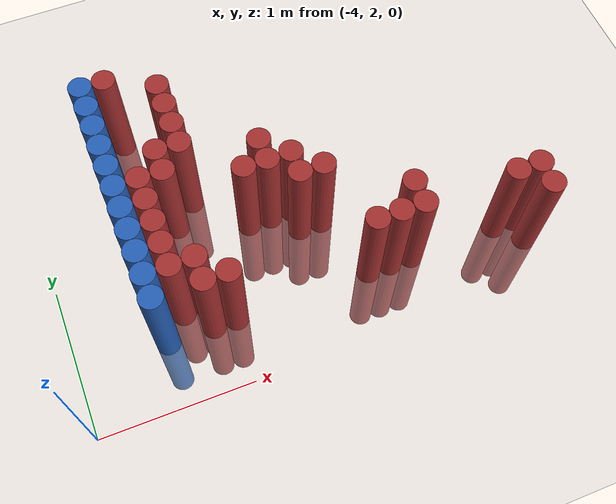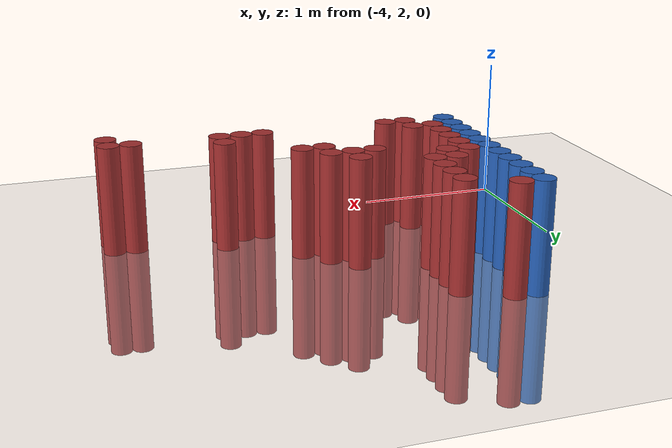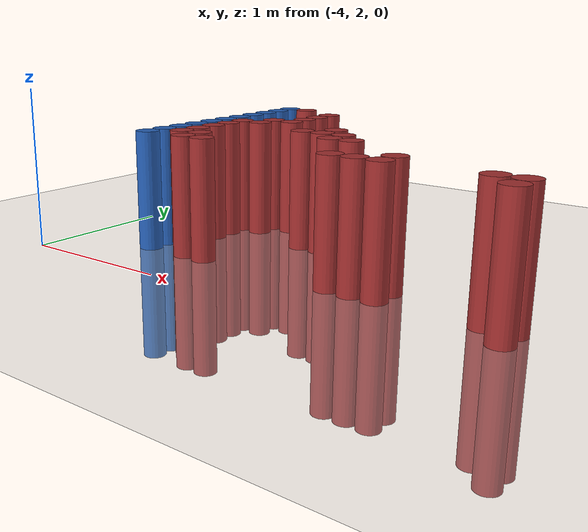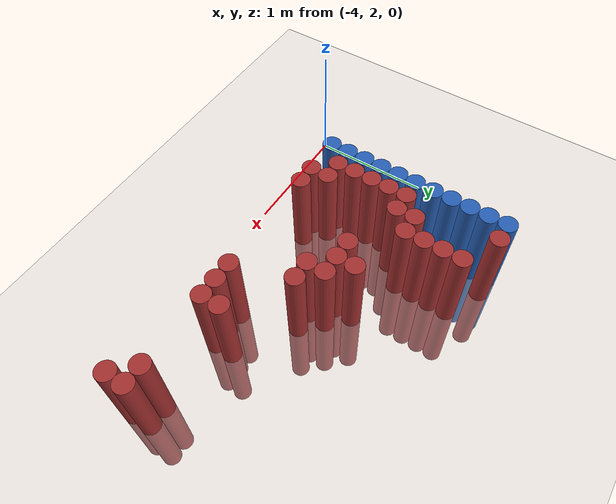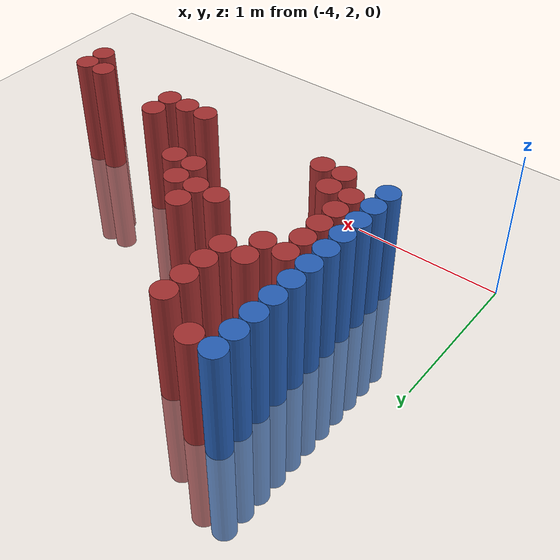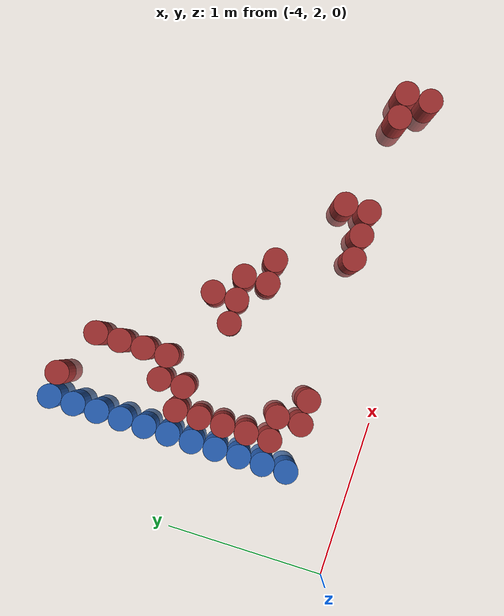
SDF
<sdf version="1.6">
 <world name="default">
  <model name="ground_plane">
   <static>1</static>
   <link name="link">
    <collision name="collision">
     <geometry><plane><normal>0 0 1</normal><size>100 100</size></plane></geometry>
     <surface><friction><ode><mu>100</mu><mu2>50</mu2></ode></friction></surface>
    </collision>
    <visual name="visual">
     <cast_shadows>0</cast_shadows>
     <geometry><plane><normal>0 0 1</normal><size>100 100</size></plane></geometry>
     <material>
      <script><uri>file://media/materials/scripts/gazebo.material</uri><name>Gazebo/Grey</name></script>
     </material>
    </visual>
   </link>
  </model>
  <model name="unit_cylinder_147">
   <static>1</static>
   <pose>-3.425000 2.425000 0.000000 0.000000 0.000000 0.000000</pose>
   <link name="link">
    <inertial>
     <mass>1</mass>
     <inertia><ixx>0.145833</ixx><ixy>0</ixy><ixz>0</ixz><iyy>0.145833</iyy><iyz>0</iyz><izz>0.125</izz></inertia>
    </inertial>
    <collision name="collision">
     <geometry><cylinder><radius>0.075000</radius><length>1.5</length></cylinder></geometry>
    </collision>
    <visual name="visual">
     <geometry><cylinder><radius>0.075000</radius><length>1.5</length></cylinder></geometry>
     <material>
      <ambient>0.152000 0.379000 0.720000 1</ambient>
      <diffuse>0.152000 0.379000 0.720000 1</diffuse>
     </material>
     <material>
      <script><name>Gazebo/Grey</name><uri>file://media/materials/scripts/gazebo.material</uri></script>
     </material>
    </visual>
   </link>
  </model>
  <model name="unit_cylinder_149">
   <static>1</static>
   <pose>-3.425000 2.575000 0.000000 0.000000 0.000000 0.000000</pose>
   <link name="link">
    <inertial>
     <mass>1</mass>
     <inertia><ixx>0.145833</ixx><ixy>0</ixy><ixz>0</ixz><iyy>0.145833</iyy><iyz>0</iyz><izz>0.125</izz></inertia>
    </inertial>
    <collision name="collision">
     <geometry><cylinder><radius>0.075000</radius><length>1.5</length></cylinder></geometry>
    </collision>
    <visual name="visual">
     <geometry><cylinder><radius>0.075000</radius><length>1.5</length></cylinder></geometry>
     <material>
      <ambient>0.152000 0.379000 0.720000 1</ambient>
      <diffuse>0.152000 0.379000 0.720000 1</diffuse>
     </material>
     <material>
      <script><name>Gazebo/Grey</name><uri>file://media/materials/scripts/gazebo.material</uri></script>
     </material>
    </visual>
   </link>
  </model>
  <model name="unit_cylinder_151">
   <static>1</static>
   <pose>-3.425000 2.725000 0.000000 0.000000 0.000000 0.000000</pose>
   <link name="link">
    <inertial>
     <mass>1</mass>
     <inertia><ixx>0.145833</ixx><ixy>0</ixy><ixz>0</ixz><iyy>0.145833</iyy><iyz>0</iyz><izz>0.125</izz></inertia>
    </inertial>
    <collision name="collision">
     <geometry><cylinder><radius>0.075000</radius><length>1.5</length></cylinder></geometry>
    </collision>
    <visual name="visual">
     <geometry><cylinder><radius>0.075000</radius><length>1.5</length></cylinder></geometry>
     <material>
      <ambient>0.152000 0.379000 0.720000 1</ambient>
      <diffuse>0.152000 0.379000 0.720000 1</diffuse>
     </material>
     <material>
      <script><name>Gazebo/Grey</name><uri>file://media/materials/scripts/gazebo.material</uri></script>
     </material>
    </visual>
   </link>
  </model>
  <model name="unit_cylinder_153">
   <static>1</static>
   <pose>-3.425000 2.875000 0.000000 0.000000 0.000000 0.000000</pose>
   <link name="link">
    <inertial>
     <mass>1</mass>
     <inertia><ixx>0.145833</ixx><ixy>0</ixy><ixz>0</ixz><iyy>0.145833</iyy><iyz>0</iyz><izz>0.125</izz></inertia>
    </inertial>
    <collision name="collision">
     <geometry><cylinder><radius>0.075000</radius><length>1.5</length></cylinder></geometry>
    </collision>
    <visual name="visual">
     <geometry><cylinder><radius>0.075000</radius><length>1.5</length></cylinder></geometry>
     <material>
      <ambient>0.152000 0.379000 0.720000 1</ambient>
      <diffuse>0.152000 0.379000 0.720000 1</diffuse>
     </material>
     <material>
      <script><name>Gazebo/Grey</name><uri>file://media/materials/scripts/gazebo.material</uri></script>
     </material>
    </visual>
   </link>
  </model>
  <model name="unit_cylinder_155">
   <static>1</static>
   <pose>-3.425000 3.025000 0.000000 0.000000 0.000000 0.000000</pose>
   <link name="link">
    <inertial>
     <mass>1</mass>
     <inertia><ixx>0.145833</ixx><ixy>0</ixy><ixz>0</ixz><iyy>0.145833</iyy><iyz>0</iyz><izz>0.125</izz></inertia>
    </inertial>
    <collision name="collision">
     <geometry><cylinder><radius>0.075000</radius><length>1.5</length></cylinder></geometry>
    </collision>
    <visual name="visual">
     <geometry><cylinder><radius>0.075000</radius><length>1.5</length></cylinder></geometry>
     <material>
      <ambient>0.152000 0.379000 0.720000 1</ambient>
      <diffuse>0.152000 0.379000 0.720000 1</diffuse>
     </material>
     <material>
      <script><name>Gazebo/Grey</name><uri>file://media/materials/scripts/gazebo.material</uri></script>
     </material>
    </visual>
   </link>
  </model>
  <model name="unit_cylinder_157">
   <static>1</static>
   <pose>-3.425000 3.175000 0.000000 0.000000 0.000000 0.000000</pose>
   <link name="link">
    <inertial>
     <mass>1</mass>
     <inertia><ixx>0.145833</ixx><ixy>0</ixy><ixz>0</ixz><iyy>0.145833</iyy><iyz>0</iyz><izz>0.125</izz></inertia>
    </inertial>
    <collision name="collision">
     <geometry><cylinder><radius>0.075000</radius><length>1.5</length></cylinder></geometry>
    </collision>
    <visual name="visual">
     <geometry><cylinder><radius>0.075000</radius><length>1.5</length></cylinder></geometry>
     <material>
      <ambient>0.152000 0.379000 0.720000 1</ambient>
      <diffuse>0.152000 0.379000 0.720000 1</diffuse>
     </material>
     <material>
      <script><name>Gazebo/Grey</name><uri>file://media/materials/scripts/gazebo.material</uri></script>
     </material>
    </visual>
   </link>
  </model>
  <model name="unit_cylinder_159">
   <static>1</static>
   <pose>-3.425000 3.325000 0.000000 0.000000 0.000000 0.000000</pose>
   <link name="link">
    <inertial>
     <mass>1</mass>
     <inertia><ixx>0.145833</ixx><ixy>0</ixy><ixz>0</ixz><iyy>0.145833</iyy><iyz>0</iyz><izz>0.125</izz></inertia>
    </inertial>
    <collision name="collision">
     <geometry><cylinder><radius>0.075000</radius><length>1.5</length></cylinder></geometry>
    </collision>
    <visual name="visual">
     <geometry><cylinder><radius>0.075000</radius><length>1.5</length></cylinder></geometry>
     <material>
      <ambient>0.152000 0.379000 0.720000 1</ambient>
      <diffuse>0.152000 0.379000 0.720000 1</diffuse>
     </material>
     <material>
      <script><name>Gazebo/Grey</name><uri>file://media/materials/scripts/gazebo.material</uri></script>
     </material>
    </visual>
   </link>
  </model>
  <model name="unit_cylinder_161">
   <static>1</static>
   <pose>-3.425000 3.475000 0.000000 0.000000 0.000000 0.000000</pose>
   <link name="link">
    <inertial>
     <mass>1</mass>
     <inertia><ixx>0.145833</ixx><ixy>0</ixy><ixz>0</ixz><iyy>0.145833</iyy><iyz>0</iyz><izz>0.125</izz></inertia>
    </inertial>
    <collision name="collision">
     <geometry><cylinder><radius>0.075000</radius><length>1.5</length></cylinder></geometry>
    </collision>
    <visual name="visual">
     <geometry><cylinder><radius>0.075000</radius><length>1.5</length></cylinder></geometry>
     <material>
      <ambient>0.152000 0.379000 0.720000 1</ambient>
      <diffuse>0.152000 0.379000 0.720000 1</diffuse>
     </material>
     <material>
      <script><name>Gazebo/Grey</name><uri>file://media/materials/scripts/gazebo.material</uri></script>
     </material>
    </visual>
   </link>
  </model>
  <model name="unit_cylinder_163">
   <static>1</static>
   <pose>-3.425000 3.625000 0.000000 0.000000 0.000000 0.000000</pose>
   <link name="link">
    <inertial>
     <mass>1</mass>
     <inertia><ixx>0.145833</ixx><ixy>0</ixy><ixz>0</ixz><iyy>0.145833</iyy><iyz>0</iyz><izz>0.125</izz></inertia>
    </inertial>
    <collision name="collision">
     <geometry><cylinder><radius>0.075000</radius><length>1.5</length></cylinder></geometry>
    </collision>
    <visual name="visual">
     <geometry><cylinder><radius>0.075000</radius><length>1.5</length></cylinder></geometry>
     <material>
      <ambient>0.152000 0.379000 0.720000 1</ambient>
      <diffuse>0.152000 0.379000 0.720000 1</diffuse>
     </material>
     <material>
      <script><name>Gazebo/Grey</name><uri>file://media/materials/scripts/gazebo.material</uri></script>
     </material>
    </visual>
   </link>
  </model>
  <model name="unit_cylinder_165">
   <static>1</static>
   <pose>-3.425000 3.775000 0.000000 0.000000 0.000000 0.000000</pose>
   <link name="link">
    <inertial>
     <mass>1</mass>
     <inertia><ixx>0.145833</ixx><ixy>0</ixy><ixz>0</ixz><iyy>0.145833</iyy><iyz>0</iyz><izz>0.125</izz></inertia>
    </inertial>
    <collision name="collision">
     <geometry><cylinder><radius>0.075000</radius><length>1.5</length></cylinder></geometry>
    </collision>
    <visual name="visual">
     <geometry><cylinder><radius>0.075000</radius><length>1.5</length></cylinder></geometry>
     <material>
      <ambient>0.152000 0.379000 0.720000 1</ambient>
      <diffuse>0.152000 0.379000 0.720000 1</diffuse>
     </material>
     <material>
      <script><name>Gazebo/Grey</name><uri>file://media/materials/scripts/gazebo.material</uri></script>
     </material>
    </visual>
   </link>
  </model>
  <model name="unit_cylinder_167">
   <static>1</static>
   <pose>-3.425000 3.925000 0.000000 0.000000 0.000000 0.000000</pose>
   <link name="link">
    <inertial>
     <mass>1</mass>
     <inertia><ixx>0.145833</ixx><ixy>0</ixy><ixz>0</ixz><iyy>0.145833</iyy><iyz>0</iyz><izz>0.125</izz></inertia>
    </inertial>
    <collision name="collision">
     <geometry><cylinder><radius>0.075000</radius><length>1.5</length></cylinder></geometry>
    </collision>
    <visual name="visual">
     <geometry><cylinder><radius>0.075000</radius><length>1.5</length></cylinder></geometry>
     <material>
      <ambient>0.152000 0.379000 0.720000 1</ambient>
      <diffuse>0.152000 0.379000 0.720000 1</diffuse>
     </material>
     <material>
      <script><name>Gazebo/Grey</name><uri>file://media/materials/scripts/gazebo.material</uri></script>
     </material>
    </visual>
   </link>
  </model>
  <model name="unit_cylinder_237">
   <static>1</static>
   <pose>-3.425000 2.425000 0.000000 0.000000 0.000000 0.000000</pose>
   <link name="link">
    <inertial>
     <mass>1</mass>
     <inertia><ixx>0.145833</ixx><ixy>0</ixy><ixz>0</ixz><iyy>0.145833</iyy><iyz>0</iyz><izz>0.125</izz></inertia>
    </inertial>
    <collision name="collision">
     <geometry><cylinder><radius>0.075000</radius><length>1.5</length></cylinder></geometry>
    </collision>
    <visual name="visual">
     <geometry><cylinder><radius>0.075000</radius><length>1.5</length></cylinder></geometry>
     <material>
      <ambient>0.152000 0.379000 0.720000 1</ambient>
      <diffuse>0.152000 0.379000 0.720000 1</diffuse>
     </material>
     <material>
      <script><name>Gazebo/Grey</name><uri>file://media/materials/scripts/gazebo.material</uri></script>
     </material>
    </visual>
   </link>
  </model>
  <model name="unit_cylinder_238">
   <static>1</static>
   <pose>-3.425000 2.575000 0.000000 0.000000 0.000000 0.000000</pose>
   <link name="link">
    <inertial>
     <mass>1</mass>
     <inertia><ixx>0.145833</ixx><ixy>0</ixy><ixz>0</ixz><iyy>0.145833</iyy><iyz>0</iyz><izz>0.125</izz></inertia>
    </inertial>
    <collision name="collision">
     <geometry><cylinder><radius>0.075000</radius><length>1.5</length></cylinder></geometry>
    </collision>
    <visual name="visual">
     <geometry><cylinder><radius>0.075000</radius><length>1.5</length></cylinder></geometry>
     <material>
      <ambient>0.152000 0.379000 0.720000 1</ambient>
      <diffuse>0.152000 0.379000 0.720000 1</diffuse>
     </material>
     <material>
      <script><name>Gazebo/Grey</name><uri>file://media/materials/scripts/gazebo.material</uri></script>
     </material>
    </visual>
   </link>
  </model>
  <model name="unit_cylinder_239">
   <static>1</static>
   <pose>-3.425000 2.725000 0.000000 0.000000 0.000000 0.000000</pose>
   <link name="link">
    <inertial>
     <mass>1</mass>
     <inertia><ixx>0.145833</ixx><ixy>0</ixy><ixz>0</ixz><iyy>0.145833</iyy><iyz>0</iyz><izz>0.125</izz></inertia>
    </inertial>
    <collision name="collision">
     <geometry><cylinder><radius>0.075000</radius><length>1.5</length></cylinder></geometry>
    </collision>
    <visual name="visual">
     <geometry><cylinder><radius>0.075000</radius><length>1.5</length></cylinder></geometry>
     <material>
      <ambient>0.152000 0.379000 0.720000 1</ambient>
      <diffuse>0.152000 0.379000 0.720000 1</diffuse>
     </material>
     <material>
      <script><name>Gazebo/Grey</name><uri>file://media/materials/scripts/gazebo.material</uri></script>
     </material>
    </visual>
   </link>
  </model>
  <model name="unit_cylinder_240">
   <static>1</static>
   <pose>-3.425000 2.875000 0.000000 0.000000 0.000000 0.000000</pose>
   <link name="link">
    <inertial>
     <mass>1</mass>
     <inertia><ixx>0.145833</ixx><ixy>0</ixy><ixz>0</ixz><iyy>0.145833</iyy><iyz>0</iyz><izz>0.125</izz></inertia>
    </inertial>
    <collision name="collision">
     <geometry><cylinder><radius>0.075000</radius><length>1.5</length></cylinder></geometry>
    </collision>
    <visual name="visual">
     <geometry><cylinder><radius>0.075000</radius><length>1.5</length></cylinder></geometry>
     <material>
      <ambient>0.152000 0.379000 0.720000 1</ambient>
      <diffuse>0.152000 0.379000 0.720000 1</diffuse>
     </material>
     <material>
      <script><name>Gazebo/Grey</name><uri>file://media/materials/scripts/gazebo.material</uri></script>
     </material>
    </visual>
   </link>
  </model>
  <model name="unit_cylinder_241">
   <static>1</static>
   <pose>-3.425000 3.025000 0.000000 0.000000 0.000000 0.000000</pose>
   <link name="link">
    <inertial>
     <mass>1</mass>
     <inertia><ixx>0.145833</ixx><ixy>0</ixy><ixz>0</ixz><iyy>0.145833</iyy><iyz>0</iyz><izz>0.125</izz></inertia>
    </inertial>
    <collision name="collision">
     <geometry><cylinder><radius>0.075000</radius><length>1.5</length></cylinder></geometry>
    </collision>
    <visual name="visual">
     <geometry><cylinder><radius>0.075000</radius><length>1.5</length></cylinder></geometry>
     <material>
      <ambient>0.152000 0.379000 0.720000 1</ambient>
      <diffuse>0.152000 0.379000 0.720000 1</diffuse>
     </material>
     <material>
      <script><name>Gazebo/Grey</name><uri>file://media/materials/scripts/gazebo.material</uri></script>
     </material>
    </visual>
   </link>
  </model>
  <model name="unit_cylinder_242">
   <static>1</static>
   <pose>-3.425000 3.175000 0.000000 0.000000 0.000000 0.000000</pose>
   <link name="link">
    <inertial>
     <mass>1</mass>
     <inertia><ixx>0.145833</ixx><ixy>0</ixy><ixz>0</ixz><iyy>0.145833</iyy><iyz>0</iyz><izz>0.125</izz></inertia>
    </inertial>
    <collision name="collision">
     <geometry><cylinder><radius>0.075000</radius><length>1.5</length></cylinder></geometry>
    </collision>
    <visual name="visual">
     <geometry><cylinder><radius>0.075000</radius><length>1.5</length></cylinder></geometry>
     <material>
      <ambient>0.152000 0.379000 0.720000 1</ambient>
      <diffuse>0.152000 0.379000 0.720000 1</diffuse>
     </material>
     <material>
      <script><name>Gazebo/Grey</name><uri>file://media/materials/scripts/gazebo.material</uri></script>
     </material>
    </visual>
   </link>
  </model>
  <model name="unit_cylinder_243">
   <static>1</static>
   <pose>-3.425000 3.325000 0.000000 0.000000 0.000000 0.000000</pose>
   <link name="link">
    <inertial>
     <mass>1</mass>
     <inertia><ixx>0.145833</ixx><ixy>0</ixy><ixz>0</ixz><iyy>0.145833</iyy><iyz>0</iyz><izz>0.125</izz></inertia>
    </inertial>
    <collision name="collision">
     <geometry><cylinder><radius>0.075000</radius><length>1.5</length></cylinder></geometry>
    </collision>
    <visual name="visual">
     <geometry><cylinder><radius>0.075000</radius><length>1.5</length></cylinder></geometry>
     <material>
      <ambient>0.152000 0.379000 0.720000 1</ambient>
      <diffuse>0.152000 0.379000 0.720000 1</diffuse>
     </material>
     <material>
      <script><name>Gazebo/Grey</name><uri>file://media/materials/scripts/gazebo.material</uri></script>
     </material>
    </visual>
   </link>
  </model>
  <model name="unit_cylinder_244">
   <static>1</static>
   <pose>-3.425000 3.475000 0.000000 0.000000 0.000000 0.000000</pose>
   <link name="link">
    <inertial>
     <mass>1</mass>
     <inertia><ixx>0.145833</ixx><ixy>0</ixy><ixz>0</ixz><iyy>0.145833</iyy><iyz>0</iyz><izz>0.125</izz></inertia>
    </inertial>
    <collision name="collision">
     <geometry><cylinder><radius>0.075000</radius><length>1.5</length></cylinder></geometry>
    </collision>
    <visual name="visual">
     <geometry><cylinder><radius>0.075000</radius><length>1.5</length></cylinder></geometry>
     <material>
      <ambient>0.152000 0.379000 0.720000 1</ambient>
      <diffuse>0.152000 0.379000 0.720000 1</diffuse>
     </material>
     <material>
      <script><name>Gazebo/Grey</name><uri>file://media/materials/scripts/gazebo.material</uri></script>
     </material>
    </visual>
   </link>
  </model>
  <model name="unit_cylinder_245">
   <static>1</static>
   <pose>-3.425000 3.625000 0.000000 0.000000 0.000000 0.000000</pose>
   <link name="link">
    <inertial>
     <mass>1</mass>
     <inertia><ixx>0.145833</ixx><ixy>0</ixy><ixz>0</ixz><iyy>0.145833</iyy><iyz>0</iyz><izz>0.125</izz></inertia>
    </inertial>
    <collision name="collision">
     <geometry><cylinder><radius>0.075000</radius><length>1.5</length></cylinder></geometry>
    </collision>
    <visual name="visual">
     <geometry><cylinder><radius>0.075000</radius><length>1.5</length></cylinder></geometry>
     <material>
      <ambient>0.152000 0.379000 0.720000 1</ambient>
      <diffuse>0.152000 0.379000 0.720000 1</diffuse>
     </material>
     <material>
      <script><name>Gazebo/Grey</name><uri>file://media/materials/scripts/gazebo.material</uri></script>
     </material>
    </visual>
   </link>
  </model>
  <model name="unit_cylinder_246">
   <static>1</static>
   <pose>-3.425000 3.775000 0.000000 0.000000 0.000000 0.000000</pose>
   <link name="link">
    <inertial>
     <mass>1</mass>
     <inertia><ixx>0.145833</ixx><ixy>0</ixy><ixz>0</ixz><iyy>0.145833</iyy><iyz>0</iyz><izz>0.125</izz></inertia>
    </inertial>
    <collision name="collision">
     <geometry><cylinder><radius>0.075000</radius><length>1.5</length></cylinder></geometry>
    </collision>
    <visual name="visual">
     <geometry><cylinder><radius>0.075000</radius><length>1.5</length></cylinder></geometry>
     <material>
      <ambient>0.152000 0.379000 0.720000 1</ambient>
      <diffuse>0.152000 0.379000 0.720000 1</diffuse>
     </material>
     <material>
      <script><name>Gazebo/Grey</name><uri>file://media/materials/scripts/gazebo.material</uri></script>
     </material>
    </visual>
   </link>
  </model>
  <model name="unit_cylinder_247">
   <static>1</static>
   <pose>-3.425000 3.925000 0.000000 0.000000 0.000000 0.000000</pose>
   <link name="link">
    <inertial>
     <mass>1</mass>
     <inertia><ixx>0.145833</ixx><ixy>0</ixy><ixz>0</ixz><iyy>0.145833</iyy><iyz>0</iyz><izz>0.125</izz></inertia>
    </inertial>
    <collision name="collision">
     <geometry><cylinder><radius>0.075000</radius><length>1.5</length></cylinder></geometry>
    </collision>
    <visual name="visual">
     <geometry><cylinder><radius>0.075000</radius><length>1.5</length></cylinder></geometry>
     <material>
      <ambient>0.152000 0.379000 0.720000 1</ambient>
      <diffuse>0.152000 0.379000 0.720000 1</diffuse>
     </material>
     <material>
      <script><name>Gazebo/Grey</name><uri>file://media/materials/scripts/gazebo.material</uri></script>
     </material>
    </visual>
   </link>
  </model>
  <model name="unit_cylinder_275">
   <static>1</static>
   <pose>-3.275000 2.575000 0.000000 0.000000 0.000000 0.000000</pose>
   <link name="link">
    <inertial>
     <mass>1</mass>
     <inertia><ixx>0.145833</ixx><ixy>0</ixy><ixz>0</ixz><iyy>0.145833</iyy><iyz>0</iyz><izz>0.125</izz></inertia>
    </inertial>
    <collision name="collision">
     <geometry><cylinder><radius>0.075000</radius><length>1.5</length></cylinder></geometry>
    </collision>
    <visual name="visual">
     <geometry><cylinder><radius>0.075000</radius><length>1.5</length></cylinder></geometry>
     <material>
      <ambient>0.648000 0.192000 0.192000 1</ambient>
      <diffuse>0.648000 0.192000 0.192000 1</diffuse>
     </material>
     <material>
      <script><name>Gazebo/Grey</name><uri>file://media/materials/scripts/gazebo.material</uri></script>
     </material>
    </visual>
   </link>
  </model>
  <model name="unit_cylinder_276">
   <static>1</static>
   <pose>-3.275000 2.725000 0.000000 0.000000 0.000000 0.000000</pose>
   <link name="link">
    <inertial>
     <mass>1</mass>
     <inertia><ixx>0.145833</ixx><ixy>0</ixy><ixz>0</ixz><iyy>0.145833</iyy><iyz>0</iyz><izz>0.125</izz></inertia>
    </inertial>
    <collision name="collision">
     <geometry><cylinder><radius>0.075000</radius><length>1.5</length></cylinder></geometry>
    </collision>
    <visual name="visual">
     <geometry><cylinder><radius>0.075000</radius><length>1.5</length></cylinder></geometry>
     <material>
      <ambient>0.648000 0.192000 0.192000 1</ambient>
      <diffuse>0.648000 0.192000 0.192000 1</diffuse>
     </material>
     <material>
      <script><name>Gazebo/Grey</name><uri>file://media/materials/scripts/gazebo.material</uri></script>
     </material>
    </visual>
   </link>
  </model>
  <model name="unit_cylinder_277">
   <static>1</static>
   <pose>-3.275000 2.875000 0.000000 0.000000 0.000000 0.000000</pose>
   <link name="link">
    <inertial>
     <mass>1</mass>
     <inertia><ixx>0.145833</ixx><ixy>0</ixy><ixz>0</ixz><iyy>0.145833</iyy><iyz>0</iyz><izz>0.125</izz></inertia>
    </inertial>
    <collision name="collision">
     <geometry><cylinder><radius>0.075000</radius><length>1.5</length></cylinder></geometry>
    </collision>
    <visual name="visual">
     <geometry><cylinder><radius>0.075000</radius><length>1.5</length></cylinder></geometry>
     <material>
      <ambient>0.648000 0.192000 0.192000 1</ambient>
      <diffuse>0.648000 0.192000 0.192000 1</diffuse>
     </material>
     <material>
      <script><name>Gazebo/Grey</name><uri>file://media/materials/scripts/gazebo.material</uri></script>
     </material>
    </visual>
   </link>
  </model>
  <model name="unit_cylinder_278">
   <static>1</static>
   <pose>-3.275000 3.025000 0.000000 0.000000 0.000000 0.000000</pose>
   <link name="link">
    <inertial>
     <mass>1</mass>
     <inertia><ixx>0.145833</ixx><ixy>0</ixy><ixz>0</ixz><iyy>0.145833</iyy><iyz>0</iyz><izz>0.125</izz></inertia>
    </inertial>
    <collision name="collision">
     <geometry><cylinder><radius>0.075000</radius><length>1.5</length></cylinder></geometry>
    </collision>
    <visual name="visual">
     <geometry><cylinder><radius>0.075000</radius><length>1.5</length></cylinder></geometry>
     <material>
      <ambient>0.648000 0.192000 0.192000 1</ambient>
      <diffuse>0.648000 0.192000 0.192000 1</diffuse>
     </material>
     <material>
      <script><name>Gazebo/Grey</name><uri>file://media/materials/scripts/gazebo.material</uri></script>
     </material>
    </visual>
   </link>
  </model>
  <model name="unit_cylinder_279">
   <static>1</static>
   <pose>-3.275000 3.175000 0.000000 0.000000 0.000000 0.000000</pose>
   <link name="link">
    <inertial>
     <mass>1</mass>
     <inertia><ixx>0.145833</ixx><ixy>0</ixy><ixz>0</ixz><iyy>0.145833</iyy><iyz>0</iyz><izz>0.125</izz></inertia>
    </inertial>
    <collision name="collision">
     <geometry><cylinder><radius>0.075000</radius><length>1.5</length></cylinder></geometry>
    </collision>
    <visual name="visual">
     <geometry><cylinder><radius>0.075000</radius><length>1.5</length></cylinder></geometry>
     <material>
      <ambient>0.648000 0.192000 0.192000 1</ambient>
      <diffuse>0.648000 0.192000 0.192000 1</diffuse>
     </material>
     <material>
      <script><name>Gazebo/Grey</name><uri>file://media/materials/scripts/gazebo.material</uri></script>
     </material>
    </visual>
   </link>
  </model>
  <model name="unit_cylinder_280">
   <static>1</static>
   <pose>-3.275000 3.925000 0.000000 0.000000 0.000000 0.000000</pose>
   <link name="link">
    <inertial>
     <mass>1</mass>
     <inertia><ixx>0.145833</ixx><ixy>0</ixy><ixz>0</ixz><iyy>0.145833</iyy><iyz>0</iyz><izz>0.125</izz></inertia>
    </inertial>
    <collision name="collision">
     <geometry><cylinder><radius>0.075000</radius><length>1.5</length></cylinder></geometry>
    </collision>
    <visual name="visual">
     <geometry><cylinder><radius>0.075000</radius><length>1.5</length></cylinder></geometry>
     <material>
      <ambient>0.648000 0.192000 0.192000 1</ambient>
      <diffuse>0.648000 0.192000 0.192000 1</diffuse>
     </material>
     <material>
      <script><name>Gazebo/Grey</name><uri>file://media/materials/scripts/gazebo.material</uri></script>
     </material>
    </visual>
   </link>
  </model>
  <model name="unit_cylinder_287">
   <static>1</static>
   <pose>-3.125000 2.425000 0.000000 0.000000 0.000000 0.000000</pose>
   <link name="link">
    <inertial>
     <mass>1</mass>
     <inertia><ixx>0.145833</ixx><ixy>0</ixy><ixz>0</ixz><iyy>0.145833</iyy><iyz>0</iyz><izz>0.125</izz></inertia>
    </inertial>
    <collision name="collision">
     <geometry><cylinder><radius>0.075000</radius><length>1.5</length></cylinder></geometry>
    </collision>
    <visual name="visual">
     <geometry><cylinder><radius>0.075000</radius><length>1.5</length></cylinder></geometry>
     <material>
      <ambient>0.648000 0.192000 0.192000 1</ambient>
      <diffuse>0.648000 0.192000 0.192000 1</diffuse>
     </material>
     <material>
      <script><name>Gazebo/Grey</name><uri>file://media/materials/scripts/gazebo.material</uri></script>
     </material>
    </visual>
   </link>
  </model>
  <model name="unit_cylinder_288">
   <static>1</static>
   <pose>-3.125000 2.575000 0.000000 0.000000 0.000000 0.000000</pose>
   <link name="link">
    <inertial>
     <mass>1</mass>
     <inertia><ixx>0.145833</ixx><ixy>0</ixy><ixz>0</ixz><iyy>0.145833</iyy><iyz>0</iyz><izz>0.125</izz></inertia>
    </inertial>
    <collision name="collision">
     <geometry><cylinder><radius>0.075000</radius><length>1.5</length></cylinder></geometry>
    </collision>
    <visual name="visual">
     <geometry><cylinder><radius>0.075000</radius><length>1.5</length></cylinder></geometry>
     <material>
      <ambient>0.648000 0.192000 0.192000 1</ambient>
      <diffuse>0.648000 0.192000 0.192000 1</diffuse>
     </material>
     <material>
      <script><name>Gazebo/Grey</name><uri>file://media/materials/scripts/gazebo.material</uri></script>
     </material>
    </visual>
   </link>
  </model>
  <model name="unit_cylinder_289">
   <static>1</static>
   <pose>-3.125000 3.175000 0.000000 0.000000 0.000000 0.000000</pose>
   <link name="link">
    <inertial>
     <mass>1</mass>
     <inertia><ixx>0.145833</ixx><ixy>0</ixy><ixz>0</ixz><iyy>0.145833</iyy><iyz>0</iyz><izz>0.125</izz></inertia>
    </inertial>
    <collision name="collision">
     <geometry><cylinder><radius>0.075000</radius><length>1.5</length></cylinder></geometry>
    </collision>
    <visual name="visual">
     <geometry><cylinder><radius>0.075000</radius><length>1.5</length></cylinder></geometry>
     <material>
      <ambient>0.648000 0.192000 0.192000 1</ambient>
      <diffuse>0.648000 0.192000 0.192000 1</diffuse>
     </material>
     <material>
      <script><name>Gazebo/Grey</name><uri>file://media/materials/scripts/gazebo.material</uri></script>
     </material>
    </visual>
   </link>
  </model>
  <model name="unit_cylinder_290">
   <static>1</static>
   <pose>-3.125000 3.325000 0.000000 0.000000 0.000000 0.000000</pose>
   <link name="link">
    <inertial>
     <mass>1</mass>
     <inertia><ixx>0.145833</ixx><ixy>0</ixy><ixz>0</ixz><iyy>0.145833</iyy><iyz>0</iyz><izz>0.125</izz></inertia>
    </inertial>
    <collision name="collision">
     <geometry><cylinder><radius>0.075000</radius><length>1.5</length></cylinder></geometry>
    </collision>
    <visual name="visual">
     <geometry><cylinder><radius>0.075000</radius><length>1.5</length></cylinder></geometry>
     <material>
      <ambient>0.648000 0.192000 0.192000 1</ambient>
      <diffuse>0.648000 0.192000 0.192000 1</diffuse>
     </material>
     <material>
      <script><name>Gazebo/Grey</name><uri>file://media/materials/scripts/gazebo.material</uri></script>
     </material>
    </visual>
   </link>
  </model>
  <model name="unit_cylinder_294">
   <static>1</static>
   <pose>-2.975000 2.425000 0.000000 0.000000 0.000000 0.000000</pose>
   <link name="link">
    <inertial>
     <mass>1</mass>
     <inertia><ixx>0.145833</ixx><ixy>0</ixy><ixz>0</ixz><iyy>0.145833</iyy><iyz>0</iyz><izz>0.125</izz></inertia>
    </inertial>
    <collision name="collision">
     <geometry><cylinder><radius>0.075000</radius><length>1.5</length></cylinder></geometry>
    </collision>
    <visual name="visual">
     <geometry><cylinder><radius>0.075000</radius><length>1.5</length></cylinder></geometry>
     <material>
      <ambient>0.648000 0.192000 0.192000 1</ambient>
      <diffuse>0.648000 0.192000 0.192000 1</diffuse>
     </material>
     <material>
      <script><name>Gazebo/Grey</name><uri>file://media/materials/scripts/gazebo.material</uri></script>
     </material>
    </visual>
   </link>
  </model>
  <model name="unit_cylinder_295">
   <static>1</static>
   <pose>-2.975000 3.325000 0.000000 0.000000 0.000000 0.000000</pose>
   <link name="link">
    <inertial>
     <mass>1</mass>
     <inertia><ixx>0.145833</ixx><ixy>0</ixy><ixz>0</ixz><iyy>0.145833</iyy><iyz>0</iyz><izz>0.125</izz></inertia>
    </inertial>
    <collision name="collision">
     <geometry><cylinder><radius>0.075000</radius><length>1.5</length></cylinder></geometry>
    </collision>
    <visual name="visual">
     <geometry><cylinder><radius>0.075000</radius><length>1.5</length></cylinder></geometry>
     <material>
      <ambient>0.648000 0.192000 0.192000 1</ambient>
      <diffuse>0.648000 0.192000 0.192000 1</diffuse>
     </material>
     <material>
      <script><name>Gazebo/Grey</name><uri>file://media/materials/scripts/gazebo.material</uri></script>
     </material>
    </visual>
   </link>
  </model>
  <model name="unit_cylinder_296">
   <static>1</static>
   <pose>-2.975000 3.475000 0.000000 0.000000 0.000000 0.000000</pose>
   <link name="link">
    <inertial>
     <mass>1</mass>
     <inertia><ixx>0.145833</ixx><ixy>0</ixy><ixz>0</ixz><iyy>0.145833</iyy><iyz>0</iyz><izz>0.125</izz></inertia>
    </inertial>
    <collision name="collision">
     <geometry><cylinder><radius>0.075000</radius><length>1.5</length></cylinder></geometry>
    </collision>
    <visual name="visual">
     <geometry><cylinder><radius>0.075000</radius><length>1.5</length></cylinder></geometry>
     <material>
      <ambient>0.648000 0.192000 0.192000 1</ambient>
      <diffuse>0.648000 0.192000 0.192000 1</diffuse>
     </material>
     <material>
      <script><name>Gazebo/Grey</name><uri>file://media/materials/scripts/gazebo.material</uri></script>
     </material>
    </visual>
   </link>
  </model>
  <model name="unit_cylinder_297">
   <static>1</static>
   <pose>-2.975000 3.625000 0.000000 0.000000 0.000000 0.000000</pose>
   <link name="link">
    <inertial>
     <mass>1</mass>
     <inertia><ixx>0.145833</ixx><ixy>0</ixy><ixz>0</ixz><iyy>0.145833</iyy><iyz>0</iyz><izz>0.125</izz></inertia>
    </inertial>
    <collision name="collision">
     <geometry><cylinder><radius>0.075000</radius><length>1.5</length></cylinder></geometry>
    </collision>
    <visual name="visual">
     <geometry><cylinder><radius>0.075000</radius><length>1.5</length></cylinder></geometry>
     <material>
      <ambient>0.648000 0.192000 0.192000 1</ambient>
      <diffuse>0.648000 0.192000 0.192000 1</diffuse>
     </material>
     <material>
      <script><name>Gazebo/Grey</name><uri>file://media/materials/scripts/gazebo.material</uri></script>
     </material>
    </visual>
   </link>
  </model>
  <model name="unit_cylinder_298">
   <static>1</static>
   <pose>-2.975000 3.775000 0.000000 0.000000 0.000000 0.000000</pose>
   <link name="link">
    <inertial>
     <mass>1</mass>
     <inertia><ixx>0.145833</ixx><ixy>0</ixy><ixz>0</ixz><iyy>0.145833</iyy><iyz>0</iyz><izz>0.125</izz></inertia>
    </inertial>
    <collision name="collision">
     <geometry><cylinder><radius>0.075000</radius><length>1.5</length></cylinder></geometry>
    </collision>
    <visual name="visual">
     <geometry><cylinder><radius>0.075000</radius><length>1.5</length></cylinder></geometry>
     <material>
      <ambient>0.648000 0.192000 0.192000 1</ambient>
      <diffuse>0.648000 0.192000 0.192000 1</diffuse>
     </material>
     <material>
      <script><name>Gazebo/Grey</name><uri>file://media/materials/scripts/gazebo.material</uri></script>
     </material>
    </visual>
   </link>
  </model>
  <model name="unit_cylinder_307">
   <static>1</static>
   <pose>-2.675000 3.025000 0.000000 0.000000 0.000000 0.000000</pose>
   <link name="link">
    <inertial>
     <mass>1</mass>
     <inertia><ixx>0.145833</ixx><ixy>0</ixy><ixz>0</ixz><iyy>0.145833</iyy><iyz>0</iyz><izz>0.125</izz></inertia>
    </inertial>
    <collision name="collision">
     <geometry><cylinder><radius>0.075000</radius><length>1.5</length></cylinder></geometry>
    </collision>
    <visual name="visual">
     <geometry><cylinder><radius>0.075000</radius><length>1.5</length></cylinder></geometry>
     <material>
      <ambient>0.648000 0.192000 0.192000 1</ambient>
      <diffuse>0.648000 0.192000 0.192000 1</diffuse>
     </material>
     <material>
      <script><name>Gazebo/Grey</name><uri>file://media/materials/scripts/gazebo.material</uri></script>
     </material>
    </visual>
   </link>
  </model>
  <model name="unit_cylinder_311">
   <static>1</static>
   <pose>-2.525000 3.025000 0.000000 0.000000 0.000000 0.000000</pose>
   <link name="link">
    <inertial>
     <mass>1</mass>
     <inertia><ixx>0.145833</ixx><ixy>0</ixy><ixz>0</ixz><iyy>0.145833</iyy><iyz>0</iyz><izz>0.125</izz></inertia>
    </inertial>
    <collision name="collision">
     <geometry><cylinder><radius>0.075000</radius><length>1.5</length></cylinder></geometry>
    </collision>
    <visual name="visual">
     <geometry><cylinder><radius>0.075000</radius><length>1.5</length></cylinder></geometry>
     <material>
      <ambient>0.648000 0.192000 0.192000 1</ambient>
      <diffuse>0.648000 0.192000 0.192000 1</diffuse>
     </material>
     <material>
      <script><name>Gazebo/Grey</name><uri>file://media/materials/scripts/gazebo.material</uri></script>
     </material>
    </visual>
   </link>
  </model>
  <model name="unit_cylinder_312">
   <static>1</static>
   <pose>-2.525000 3.175000 0.000000 0.000000 0.000000 0.000000</pose>
   <link name="link">
    <inertial>
     <mass>1</mass>
     <inertia><ixx>0.145833</ixx><ixy>0</ixy><ixz>0</ixz><iyy>0.145833</iyy><iyz>0</iyz><izz>0.125</izz></inertia>
    </inertial>
    <collision name="collision">
     <geometry><cylinder><radius>0.075000</radius><length>1.5</length></cylinder></geometry>
    </collision>
    <visual name="visual">
     <geometry><cylinder><radius>0.075000</radius><length>1.5</length></cylinder></geometry>
     <material>
      <ambient>0.648000 0.192000 0.192000 1</ambient>
      <diffuse>0.648000 0.192000 0.192000 1</diffuse>
     </material>
     <material>
      <script><name>Gazebo/Grey</name><uri>file://media/materials/scripts/gazebo.material</uri></script>
     </material>
    </visual>
   </link>
  </model>
  <model name="unit_cylinder_319">
   <static>1</static>
   <pose>-2.375000 2.875000 0.000000 0.000000 0.000000 0.000000</pose>
   <link name="link">
    <inertial>
     <mass>1</mass>
     <inertia><ixx>0.145833</ixx><ixy>0</ixy><ixz>0</ixz><iyy>0.145833</iyy><iyz>0</iyz><izz>0.125</izz></inertia>
    </inertial>
    <collision name="collision">
     <geometry><cylinder><radius>0.075000</radius><length>1.5</length></cylinder></geometry>
    </collision>
    <visual name="visual">
     <geometry><cylinder><radius>0.075000</radius><length>1.5</length></cylinder></geometry>
     <material>
      <ambient>0.648000 0.192000 0.192000 1</ambient>
      <diffuse>0.648000 0.192000 0.192000 1</diffuse>
     </material>
     <material>
      <script><name>Gazebo/Grey</name><uri>file://media/materials/scripts/gazebo.material</uri></script>
     </material>
    </visual>
   </link>
  </model>
  <model name="unit_cylinder_320">
   <static>1</static>
   <pose>-2.375000 3.025000 0.000000 0.000000 0.000000 0.000000</pose>
   <link name="link">
    <inertial>
     <mass>1</mass>
     <inertia><ixx>0.145833</ixx><ixy>0</ixy><ixz>0</ixz><iyy>0.145833</iyy><iyz>0</iyz><izz>0.125</izz></inertia>
    </inertial>
    <collision name="collision">
     <geometry><cylinder><radius>0.075000</radius><length>1.5</length></cylinder></geometry>
    </collision>
    <visual name="visual">
     <geometry><cylinder><radius>0.075000</radius><length>1.5</length></cylinder></geometry>
     <material>
      <ambient>0.648000 0.192000 0.192000 1</ambient>
      <diffuse>0.648000 0.192000 0.192000 1</diffuse>
     </material>
     <material>
      <script><name>Gazebo/Grey</name><uri>file://media/materials/scripts/gazebo.material</uri></script>
     </material>
    </visual>
   </link>
  </model>
  <model name="unit_cylinder_327">
   <static>1</static>
   <pose>-2.225000 2.875000 0.000000 0.000000 0.000000 0.000000</pose>
   <link name="link">
    <inertial>
     <mass>1</mass>
     <inertia><ixx>0.145833</ixx><ixy>0</ixy><ixz>0</ixz><iyy>0.145833</iyy><iyz>0</iyz><izz>0.125</izz></inertia>
    </inertial>
    <collision name="collision">
     <geometry><cylinder><radius>0.075000</radius><length>1.5</length></cylinder></geometry>
    </collision>
    <visual name="visual">
     <geometry><cylinder><radius>0.075000</radius><length>1.5</length></cylinder></geometry>
     <material>
      <ambient>0.648000 0.192000 0.192000 1</ambient>
      <diffuse>0.648000 0.192000 0.192000 1</diffuse>
     </material>
     <material>
      <script><name>Gazebo/Grey</name><uri>file://media/materials/scripts/gazebo.material</uri></script>
     </material>
    </visual>
   </link>
  </model>
  <model name="unit_cylinder_334">
   <static>1</static>
   <pose>-2.075000 2.425000 0.000000 0.000000 0.000000 0.000000</pose>
   <link name="link">
    <inertial>
     <mass>1</mass>
     <inertia><ixx>0.145833</ixx><ixy>0</ixy><ixz>0</ixz><iyy>0.145833</iyy><iyz>0</iyz><izz>0.125</izz></inertia>
    </inertial>
    <collision name="collision">
     <geometry><cylinder><radius>0.075000</radius><length>1.5</length></cylinder></geometry>
    </collision>
    <visual name="visual">
     <geometry><cylinder><radius>0.075000</radius><length>1.5</length></cylinder></geometry>
     <material>
      <ambient>0.648000 0.192000 0.192000 1</ambient>
      <diffuse>0.648000 0.192000 0.192000 1</diffuse>
     </material>
     <material>
      <script><name>Gazebo/Grey</name><uri>file://media/materials/scripts/gazebo.material</uri></script>
     </material>
    </visual>
   </link>
  </model>
  <model name="unit_cylinder_340">
   <static>1</static>
   <pose>-1.925000 2.425000 0.000000 0.000000 0.000000 0.000000</pose>
   <link name="link">
    <inertial>
     <mass>1</mass>
     <inertia><ixx>0.145833</ixx><ixy>0</ixy><ixz>0</ixz><iyy>0.145833</iyy><iyz>0</iyz><izz>0.125</izz></inertia>
    </inertial>
    <collision name="collision">
     <geometry><cylinder><radius>0.075000</radius><length>1.5</length></cylinder></geometry>
    </collision>
    <visual name="visual">
     <geometry><cylinder><radius>0.075000</radius><length>1.5</length></cylinder></geometry>
     <material>
      <ambient>0.648000 0.192000 0.192000 1</ambient>
      <diffuse>0.648000 0.192000 0.192000 1</diffuse>
     </material>
     <material>
      <script><name>Gazebo/Grey</name><uri>file://media/materials/scripts/gazebo.material</uri></script>
     </material>
    </visual>
   </link>
  </model>
  <model name="unit_cylinder_346">
   <static>1</static>
   <pose>-1.775000 2.425000 0.000000 0.000000 0.000000 0.000000</pose>
   <link name="link">
    <inertial>
     <mass>1</mass>
     <inertia><ixx>0.145833</ixx><ixy>0</ixy><ixz>0</ixz><iyy>0.145833</iyy><iyz>0</iyz><izz>0.125</izz></inertia>
    </inertial>
    <collision name="collision">
     <geometry><cylinder><radius>0.075000</radius><length>1.5</length></cylinder></geometry>
    </collision>
    <visual name="visual">
     <geometry><cylinder><radius>0.075000</radius><length>1.5</length></cylinder></geometry>
     <material>
      <ambient>0.648000 0.192000 0.192000 1</ambient>
      <diffuse>0.648000 0.192000 0.192000 1</diffuse>
     </material>
     <material>
      <script><name>Gazebo/Grey</name><uri>file://media/materials/scripts/gazebo.material</uri></script>
     </material>
    </visual>
   </link>
  </model>
  <model name="unit_cylinder_347">
   <static>1</static>
   <pose>-1.775000 2.575000 0.000000 0.000000 0.000000 0.000000</pose>
   <link name="link">
    <inertial>
     <mass>1</mass>
     <inertia><ixx>0.145833</ixx><ixy>0</ixy><ixz>0</ixz><iyy>0.145833</iyy><iyz>0</iyz><izz>0.125</izz></inertia>
    </inertial>
    <collision name="collision">
     <geometry><cylinder><radius>0.075000</radius><length>1.5</length></cylinder></geometry>
    </collision>
    <visual name="visual">
     <geometry><cylinder><radius>0.075000</radius><length>1.5</length></cylinder></geometry>
     <material>
      <ambient>0.648000 0.192000 0.192000 1</ambient>
      <diffuse>0.648000 0.192000 0.192000 1</diffuse>
     </material>
     <material>
      <script><name>Gazebo/Grey</name><uri>file://media/materials/scripts/gazebo.material</uri></script>
     </material>
    </visual>
   </link>
  </model>
  <model name="unit_cylinder_381">
   <static>1</static>
   <pose>-1.175000 2.425000 0.000000 0.000000 0.000000 0.000000</pose>
   <link name="link">
    <inertial>
     <mass>1</mass>
     <inertia><ixx>0.145833</ixx><ixy>0</ixy><ixz>0</ixz><iyy>0.145833</iyy><iyz>0</iyz><izz>0.125</izz></inertia>
    </inertial>
    <collision name="collision">
     <geometry><cylinder><radius>0.075000</radius><length>1.5</length></cylinder></geometry>
    </collision>
    <visual name="visual">
     <geometry><cylinder><radius>0.075000</radius><length>1.5</length></cylinder></geometry>
     <material>
      <ambient>0.648000 0.192000 0.192000 1</ambient>
      <diffuse>0.648000 0.192000 0.192000 1</diffuse>
     </material>
     <material>
      <script><name>Gazebo/Grey</name><uri>file://media/materials/scripts/gazebo.material</uri></script>
     </material>
    </visual>
   </link>
  </model>
  <model name="unit_cylinder_389">
   <static>1</static>
   <pose>-1.025000 2.275000 0.000000 0.000000 0.000000 0.000000</pose>
   <link name="link">
    <inertial>
     <mass>1</mass>
     <inertia><ixx>0.145833</ixx><ixy>0</ixy><ixz>0</ixz><iyy>0.145833</iyy><iyz>0</iyz><izz>0.125</izz></inertia>
    </inertial>
    <collision name="collision">
     <geometry><cylinder><radius>0.075000</radius><length>1.5</length></cylinder></geometry>
    </collision>
    <visual name="visual">
     <geometry><cylinder><radius>0.075000</radius><length>1.5</length></cylinder></geometry>
     <material>
      <ambient>0.648000 0.192000 0.192000 1</ambient>
      <diffuse>0.648000 0.192000 0.192000 1</diffuse>
     </material>
     <material>
      <script><name>Gazebo/Grey</name><uri>file://media/materials/scripts/gazebo.material</uri></script>
     </material>
    </visual>
   </link>
  </model>
  <model name="unit_cylinder_390">
   <static>1</static>
   <pose>-1.025000 2.425000 0.000000 0.000000 0.000000 0.000000</pose>
   <link name="link">
    <inertial>
     <mass>1</mass>
     <inertia><ixx>0.145833</ixx><ixy>0</ixy><ixz>0</ixz><iyy>0.145833</iyy><iyz>0</iyz><izz>0.125</izz></inertia>
    </inertial>
    <collision name="collision">
     <geometry><cylinder><radius>0.075000</radius><length>1.5</length></cylinder></geometry>
    </collision>
    <visual name="visual">
     <geometry><cylinder><radius>0.075000</radius><length>1.5</length></cylinder></geometry>
     <material>
      <ambient>0.648000 0.192000 0.192000 1</ambient>
      <diffuse>0.648000 0.192000 0.192000 1</diffuse>
     </material>
     <material>
      <script><name>Gazebo/Grey</name><uri>file://media/materials/scripts/gazebo.material</uri></script>
     </material>
    </visual>
   </link>
  </model>
 </world>
</sdf>
